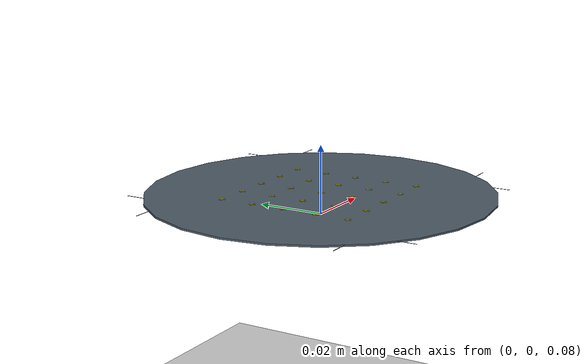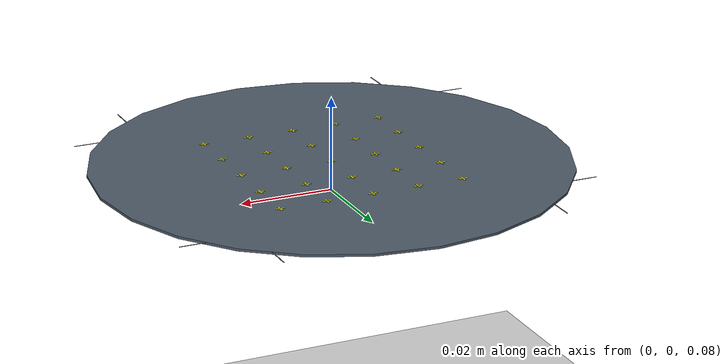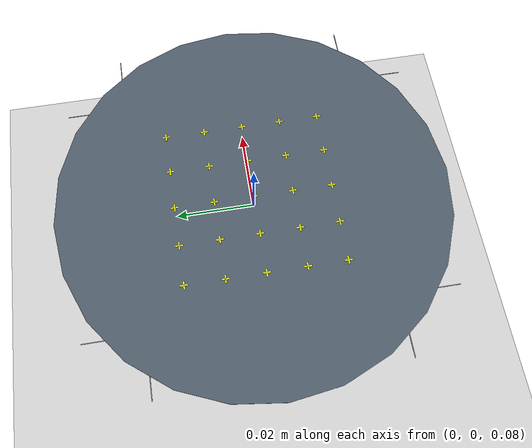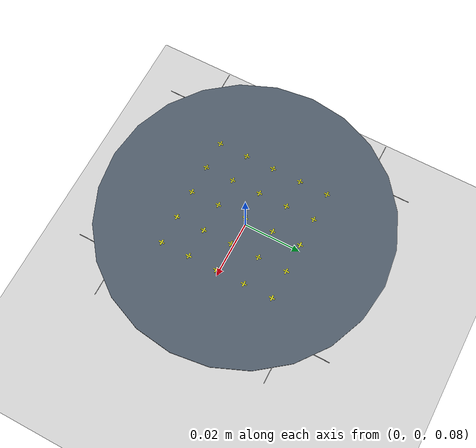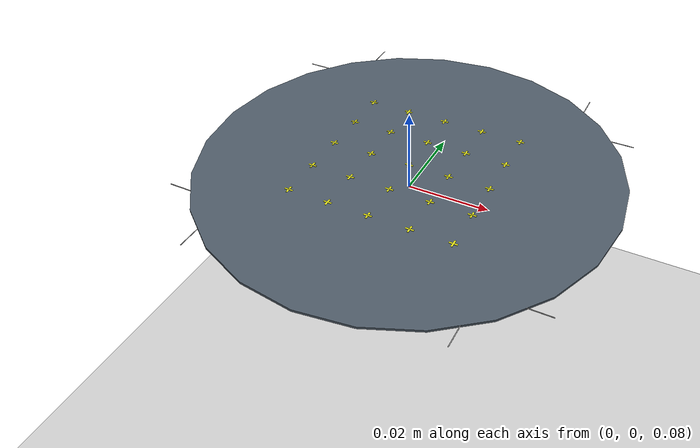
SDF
<sdf version='1.10'>
  <world name='empty'>
    <physics name='1ms' type='ignored'>
      <max_step_size>0.001</max_step_size>
      <real_time_factor>1</real_time_factor>
      <real_time_update_rate>1000</real_time_update_rate>
    </physics>
    <plugin name='gz::sim::systems::Physics' filename='gz-sim-physics-system' />
    <plugin name='gz::sim::systems::UserCommands' filename='gz-sim-user-commands-system' />
    <plugin name='gz::sim::systems::SceneBroadcaster' filename='gz-sim-scene-broadcaster-system' />
    <plugin name='gz::sim::systems::Contact' filename='gz-sim-contact-system' />
    <gravity>0 0 -9.8000000000000007</gravity>
    <magnetic_field>5.5644999999999998e-06 2.2875799999999999e-05 -4.2388400000000002e-05</magnetic_field>
    <atmosphere type='adiabatic' />
    <scene>
      <ambient>0.400000006 0.400000006 0.400000006 1</ambient>
      <background>0.699999988 0.699999988 0.699999988 1</background>
      <shadows>true</shadows>
    </scene>

    <include>
      <uri>model://wafer</uri>
      <pose>0 0 0.086 0 0 0</pose>
    </include>

    <model name='ground_plane'>
      <static>true</static>
      <link name='link'>
        <collision name='collision'>
          <geometry>
            <plane>
              <normal>0 0 1</normal>
              <size>100 100</size>
            </plane>
          </geometry>
          <surface>
            <friction>
              <ode />
            </friction>
            <bounce />
            <contact />
          </surface>
        </collision>
        <visual name='visual'>
          <geometry>
            <plane>
              <normal>0 0 1</normal>
              <size>100 100</size>
            </plane>
          </geometry>
          <material>
            <ambient>0.800000012 0.800000012 0.800000012 1</ambient>
            <diffuse>0.800000012 0.800000012 0.800000012 1</diffuse>
            <specular>0.800000012 0.800000012 0.800000012 1</specular>
          </material>
        </visual>
        <pose>0 0 0 0 0 0</pose>
        <inertial>
          <pose>0 0 0 0 0 0</pose>
          <mass>1</mass>
          <inertia>
            <ixx>1</ixx>
            <ixy>0</ixy>
            <ixz>0</ixz>
            <iyy>1</iyy>
            <iyz>0</iyz>
            <izz>1</izz>
          </inertia>
        </inertial>
        <enable_wind>false</enable_wind>
      </link>
      <pose>0 0 0 0 0 0</pose>
      <self_collide>false</self_collide>
    </model>
    <light name='sun' type='directional'>
      <pose>0 0 10 0 0 0</pose>
      <cast_shadows>true</cast_shadows>
      <intensity>1</intensity>
      <direction>-0.5 0.10000000000000001 -0.90000000000000002</direction>
      <diffuse>0.800000012 0.800000012 0.800000012 1</diffuse>
      <specular>0.200000003 0.200000003 0.200000003 1</specular>
      <attenuation>
        <range>1000</range>
        <linear>0.01</linear>
        <constant>0.90000000000000002</constant>
        <quadratic>0.001</quadratic>
      </attenuation>
      <spot>
        <inner_angle>0</inner_angle>
        <outer_angle>0</outer_angle>
        <falloff>0</falloff>
      </spot>
    </light>
  </world>
</sdf>

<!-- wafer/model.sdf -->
<sdf version="1.8">
    <model name="wafer">
        <pose>0 0 0.086 0 0 0</pose>
        <link name="wafer_link">

        <!-- Wafer body -->
        <visual name="wafer_body">
            <geometry>
            <cylinder>
                <radius>0.05</radius>
                <length>0.000525</length>
            </cylinder>
            </geometry>
            <material>
            <ambient>0.2 0.25 0.3 1</ambient>
            <diffuse>0.3 0.35 0.4 1</diffuse>
            <specular>0.8 0.8 0.9 1</specular>
            </material>
        </visual>

        <!-- Die grid lines — horizontal -->
        <visual name="grid_h1"><pose>0 -0.03 0.0002 0 0 0</pose><geometry><box><size>0.09 0.0002 0.00005</size></box></geometry><material><ambient>0.5 0.5 0.5 1</ambient></material></visual>
        <visual name="grid_h2"><pose>0 -0.02 0.0002 0 0 0</pose><geometry><box><size>0.09 0.0002 0.00005</size></box></geometry><material><ambient>0.5 0.5 0.5 1</ambient></material></visual>
        <visual name="grid_h3"><pose>0 -0.01 0.0002 0 0 0</pose><geometry><box><size>0.09 0.0002 0.00005</size></box></geometry><material><ambient>0.5 0.5 0.5 1</ambient></material></visual>
        <visual name="grid_h4"><pose>0  0.00 0.0002 0 0 0</pose><geometry><box><size>0.09 0.0002 0.00005</size></box></geometry><material><ambient>0.5 0.5 0.5 1</ambient></material></visual>
        <visual name="grid_h5"><pose>0  0.01 0.0002 0 0 0</pose><geometry><box><size>0.09 0.0002 0.00005</size></box></geometry><material><ambient>0.5 0.5 0.5 1</ambient></material></visual>
        <visual name="grid_h6"><pose>0  0.02 0.0002 0 0 0</pose><geometry><box><size>0.09 0.0002 0.00005</size></box></geometry><material><ambient>0.5 0.5 0.5 1</ambient></material></visual>
        <visual name="grid_h7"><pose>0  0.03 0.0002 0 0 0</pose><geometry><box><size>0.09 0.0002 0.00005</size></box></geometry><material><ambient>0.5 0.5 0.5 1</ambient></material></visual>

        <!-- Die grid lines — vertical -->
        <visual name="grid_v1"><pose>-0.03 0 0.0002 0 0 0</pose><geometry><box><size>0.0002 0.09 0.00005</size></box></geometry><material><ambient>0.5 0.5 0.5 1</ambient></material></visual>
        <visual name="grid_v2"><pose>-0.02 0 0.0002 0 0 0</pose><geometry><box><size>0.0002 0.09 0.00005</size></box></geometry><material><ambient>0.5 0.5 0.5 1</ambient></material></visual>
        <visual name="grid_v3"><pose>-0.01 0 0.0002 0 0 0</pose><geometry><box><size>0.0002 0.09 0.00005</size></box></geometry><material><ambient>0.5 0.5 0.5 1</ambient></material></visual>
        <visual name="grid_v4"><pose> 0.00 0 0.0002 0 0 0</pose><geometry><box><size>0.0002 0.09 0.00005</size></box></geometry><material><ambient>0.5 0.5 0.5 1</ambient></material></visual>
        <visual name="grid_v5"><pose> 0.01 0 0.0002 0 0 0</pose><geometry><box><size>0.0002 0.09 0.00005</size></box></geometry><material><ambient>0.5 0.5 0.5 1</ambient></material></visual>
        <visual name="grid_v6"><pose> 0.02 0 0.0002 0 0 0</pose><geometry><box><size>0.0002 0.09 0.00005</size></box></geometry><material><ambient>0.5 0.5 0.5 1</ambient></material></visual>
        <visual name="grid_v7"><pose> 0.03 0 0.0002 0 0 0</pose><geometry><box><size>0.0002 0.09 0.00005</size></box></geometry><material><ambient>0.5 0.5 0.5 1</ambient></material></visual>

        <!-- Alignment marks — yellow crosses at each die corner intersection -->
        <!-- Row -2 -->
        <visual name="am_n2n2_h"><pose>-0.02 -0.02 0.0003 0 0 0</pose><geometry><box><size>0.002 0.0004 0.0001</size></box></geometry><material><ambient>0.9 0.9 0.1 1</ambient></material></visual>
        <visual name="am_n2n2_v"><pose>-0.02 -0.02 0.0003 0 0 0</pose><geometry><box><size>0.0004 0.002 0.0001</size></box></geometry><material><ambient>0.9 0.9 0.1 1</ambient></material></visual>

        <visual name="am_n2n1_h"><pose>-0.01 -0.02 0.0003 0 0 0</pose><geometry><box><size>0.002 0.0004 0.0001</size></box></geometry><material><ambient>0.9 0.9 0.1 1</ambient></material></visual>
        <visual name="am_n2n1_v"><pose>-0.01 -0.02 0.0003 0 0 0</pose><geometry><box><size>0.0004 0.002 0.0001</size></box></geometry><material><ambient>0.9 0.9 0.1 1</ambient></material></visual>

        <visual name="am_n2z0_h"><pose>0.00 -0.02 0.0003 0 0 0</pose><geometry><box><size>0.002 0.0004 0.0001</size></box></geometry><material><ambient>0.9 0.9 0.1 1</ambient></material></visual>
        <visual name="am_n2z0_v"><pose>0.00 -0.02 0.0003 0 0 0</pose><geometry><box><size>0.0004 0.002 0.0001</size></box></geometry><material><ambient>0.9 0.9 0.1 1</ambient></material></visual>

        <visual name="am_n2p1_h"><pose>0.01 -0.02 0.0003 0 0 0</pose><geometry><box><size>0.002 0.0004 0.0001</size></box></geometry><material><ambient>0.9 0.9 0.1 1</ambient></material></visual>
        <visual name="am_n2p1_v"><pose>0.01 -0.02 0.0003 0 0 0</pose><geometry><box><size>0.0004 0.002 0.0001</size></box></geometry><material><ambient>0.9 0.9 0.1 1</ambient></material></visual>

        <visual name="am_n2p2_h"><pose>0.02 -0.02 0.0003 0 0 0</pose><geometry><box><size>0.002 0.0004 0.0001</size></box></geometry><material><ambient>0.9 0.9 0.1 1</ambient></material></visual>
        <visual name="am_n2p2_v"><pose>0.02 -0.02 0.0003 0 0 0</pose><geometry><box><size>0.0004 0.002 0.0001</size></box></geometry><material><ambient>0.9 0.9 0.1 1</ambient></material></visual>

        <!-- Row -1 -->
        <visual name="am_n1n2_h"><pose>-0.02 -0.01 0.0003 0 0 0</pose><geometry><box><size>0.002 0.0004 0.0001</size></box></geometry><material><ambient>0.9 0.9 0.1 1</ambient></material></visual>
        <visual name="am_n1n2_v"><pose>-0.02 -0.01 0.0003 0 0 0</pose><geometry><box><size>0.0004 0.002 0.0001</size></box></geometry><material><ambient>0.9 0.9 0.1 1</ambient></material></visual>

        <visual name="am_n1n1_h"><pose>-0.01 -0.01 0.0003 0 0 0</pose><geometry><box><size>0.002 0.0004 0.0001</size></box></geometry><material><ambient>0.9 0.9 0.1 1</ambient></material></visual>
        <visual name="am_n1n1_v"><pose>-0.01 -0.01 0.0003 0 0 0</pose><geometry><box><size>0.0004 0.002 0.0001</size></box></geometry><material><ambient>0.9 0.9 0.1 1</ambient></material></visual>

        <visual name="am_n1z0_h"><pose>0.00 -0.01 0.0003 0 0 0</pose><geometry><box><size>0.002 0.0004 0.0001</size></box></geometry><material><ambient>0.9 0.9 0.1 1</ambient></material></visual>
        <visual name="am_n1z0_v"><pose>0.00 -0.01 0.0003 0 0 0</pose><geometry><box><size>0.0004 0.002 0.0001</size></box></geometry><material><ambient>0.9 0.9 0.1 1</ambient></material></visual>

        <visual name="am_n1p1_h"><pose>0.01 -0.01 0.0003 0 0 0</pose><geometry><box><size>0.002 0.0004 0.0001</size></box></geometry><material><ambient>0.9 0.9 0.1 1</ambient></material></visual>
        <visual name="am_n1p1_v"><pose>0.01 -0.01 0.0003 0 0 0</pose><geometry><box><size>0.0004 0.002 0.0001</size></box></geometry><material><ambient>0.9 0.9 0.1 1</ambient></material></visual>

        <visual name="am_n1p2_h"><pose>0.02 -0.01 0.0003 0 0 0</pose><geometry><box><size>0.002 0.0004 0.0001</size></box></geometry><material><ambient>0.9 0.9 0.1 1</ambient></material></visual>
        <visual name="am_n1p2_v"><pose>0.02 -0.01 0.0003 0 0 0</pose><geometry><box><size>0.0004 0.002 0.0001</size></box></geometry><material><ambient>0.9 0.9 0.1 1</ambient></material></visual>

        <!-- Row 0 -->
        <visual name="am_z0n2_h"><pose>-0.02 0.00 0.0003 0 0 0</pose><geometry><box><size>0.002 0.0004 0.0001</size></box></geometry><material><ambient>0.9 0.9 0.1 1</ambient></material></visual>
        <visual name="am_z0n2_v"><pose>-0.02 0.00 0.0003 0 0 0</pose><geometry><box><size>0.0004 0.002 0.0001</size></box></geometry><material><ambient>0.9 0.9 0.1 1</ambient></material></visual>

        <visual name="am_z0n1_h"><pose>-0.01 0.00 0.0003 0 0 0</pose><geometry><box><size>0.002 0.0004 0.0001</size></box></geometry><material><ambient>0.9 0.9 0.1 1</ambient></material></visual>
        <visual name="am_z0n1_v"><pose>-0.01 0.00 0.0003 0 0 0</pose><geometry><box><size>0.0004 0.002 0.0001</size></box></geometry><material><ambient>0.9 0.9 0.1 1</ambient></material></visual>

        <visual name="am_z0z0_h"><pose>0.00 0.00 0.0003 0 0 0</pose><geometry><box><size>0.002 0.0004 0.0001</size></box></geometry><material><ambient>0.9 0.9 0.1 1</ambient></material></visual>
        <visual name="am_z0z0_v"><pose>0.00 0.00 0.0003 0 0 0</pose><geometry><box><size>0.0004 0.002 0.0001</size></box></geometry><material><ambient>0.9 0.9 0.1 1</ambient></material></visual>

        <visual name="am_z0p1_h"><pose>0.01 0.00 0.0003 0 0 0</pose><geometry><box><size>0.002 0.0004 0.0001</size></box></geometry><material><ambient>0.9 0.9 0.1 1</ambient></material></visual>
        <visual name="am_z0p1_v"><pose>0.01 0.00 0.0003 0 0 0</pose><geometry><box><size>0.0004 0.002 0.0001</size></box></geometry><material><ambient>0.9 0.9 0.1 1</ambient></material></visual>

        <visual name="am_z0p2_h"><pose>0.02 0.00 0.0003 0 0 0</pose><geometry><box><size>0.002 0.0004 0.0001</size></box></geometry><material><ambient>0.9 0.9 0.1 1</ambient></material></visual>
        <visual name="am_z0p2_v"><pose>0.02 0.00 0.0003 0 0 0</pose><geometry><box><size>0.0004 0.002 0.0001</size></box></geometry><material><ambient>0.9 0.9 0.1 1</ambient></material></visual>

        <!-- Row +1 -->
        <visual name="am_p1n2_h"><pose>-0.02 0.01 0.0003 0 0 0</pose><geometry><box><size>0.002 0.0004 0.0001</size></box></geometry><material><ambient>0.9 0.9 0.1 1</ambient></material></visual>
        <visual name="am_p1n2_v"><pose>-0.02 0.01 0.0003 0 0 0</pose><geometry><box><size>0.0004 0.002 0.0001</size></box></geometry><material><ambient>0.9 0.9 0.1 1</ambient></material></visual>

        <visual name="am_p1n1_h"><pose>-0.01 0.01 0.0003 0 0 0</pose><geometry><box><size>0.002 0.0004 0.0001</size></box></geometry><material><ambient>0.9 0.9 0.1 1</ambient></material></visual>
        <visual name="am_p1n1_v"><pose>-0.01 0.01 0.0003 0 0 0</pose><geometry><box><size>0.0004 0.002 0.0001</size></box></geometry><material><ambient>0.9 0.9 0.1 1</ambient></material></visual>

        <visual name="am_p1z0_h"><pose>0.00 0.01 0.0003 0 0 0</pose><geometry><box><size>0.002 0.0004 0.0001</size></box></geometry><material><ambient>0.9 0.9 0.1 1</ambient></material></visual>
        <visual name="am_p1z0_v"><pose>0.00 0.01 0.0003 0 0 0</pose><geometry><box><size>0.0004 0.002 0.0001</size></box></geometry><material><ambient>0.9 0.9 0.1 1</ambient></material></visual>

        <visual name="am_p1p1_h"><pose>0.01 0.01 0.0003 0 0 0</pose><geometry><box><size>0.002 0.0004 0.0001</size></box></geometry><material><ambient>0.9 0.9 0.1 1</ambient></material></visual>
        <visual name="am_p1p1_v"><pose>0.01 0.01 0.0003 0 0 0</pose><geometry><box><size>0.0004 0.002 0.0001</size></box></geometry><material><ambient>0.9 0.9 0.1 1</ambient></material></visual>

        <visual name="am_p1p2_h"><pose>0.02 0.01 0.0003 0 0 0</pose><geometry><box><size>0.002 0.0004 0.0001</size></box></geometry><material><ambient>0.9 0.9 0.1 1</ambient></material></visual>
        <visual name="am_p1p2_v"><pose>0.02 0.01 0.0003 0 0 0</pose><geometry><box><size>0.0004 0.002 0.0001</size></box></geometry><material><ambient>0.9 0.9 0.1 1</ambient></material></visual>

        <!-- Row +2 -->
        <visual name="am_p2n2_h"><pose>-0.02 0.02 0.0003 0 0 0</pose><geometry><box><size>0.002 0.0004 0.0001</size></box></geometry><material><ambient>0.9 0.9 0.1 1</ambient></material></visual>
        <visual name="am_p2n2_v"><pose>-0.02 0.02 0.0003 0 0 0</pose><geometry><box><size>0.0004 0.002 0.0001</size></box></geometry><material><ambient>0.9 0.9 0.1 1</ambient></material></visual>

        <visual name="am_p2n1_h"><pose>-0.01 0.02 0.0003 0 0 0</pose><geometry><box><size>0.002 0.0004 0.0001</size></box></geometry><material><ambient>0.9 0.9 0.1 1</ambient></material></visual>
        <visual name="am_p2n1_v"><pose>-0.01 0.02 0.0003 0 0 0</pose><geometry><box><size>0.0004 0.002 0.0001</size></box></geometry><material><ambient>0.9 0.9 0.1 1</ambient></material></visual>

        <visual name="am_p2z0_h"><pose>0.00 0.02 0.0003 0 0 0</pose><geometry><box><size>0.002 0.0004 0.0001</size></box></geometry><material><ambient>0.9 0.9 0.1 1</ambient></material></visual>
        <visual name="am_p2z0_v"><pose>0.00 0.02 0.0003 0 0 0</pose><geometry><box><size>0.0004 0.002 0.0001</size></box></geometry><material><ambient>0.9 0.9 0.1 1</ambient></material></visual>

        <visual name="am_p2p1_h"><pose>0.01 0.02 0.0003 0 0 0</pose><geometry><box><size>0.002 0.0004 0.0001</size></box></geometry><material><ambient>0.9 0.9 0.1 1</ambient></material></visual>
        <visual name="am_p2p1_v"><pose>0.01 0.02 0.0003 0 0 0</pose><geometry><box><size>0.0004 0.002 0.0001</size></box></geometry><material><ambient>0.9 0.9 0.1 1</ambient></material></visual>

        <visual name="am_p2p2_h"><pose>0.02 0.02 0.0003 0 0 0</pose><geometry><box><size>0.002 0.0004 0.0001</size></box></geometry><material><ambient>0.9 0.9 0.1 1</ambient></material></visual>
        <visual name="am_p2p2_v"><pose>0.02 0.02 0.0003 0 0 0</pose><geometry><box><size>0.0004 0.002 0.0001</size></box></geometry><material><ambient>0.9 0.9 0.1 1</ambient></material></visual>

        <collision name="c">
            <geometry>
            <cylinder>
                <radius>0.05</radius>
                <length>0.000525</length>
            </cylinder>
            </geometry>
        </collision>
        <inertial>
            <mass>0.01</mass>
        </inertial>
        </link>
    </model>
</sdf>
